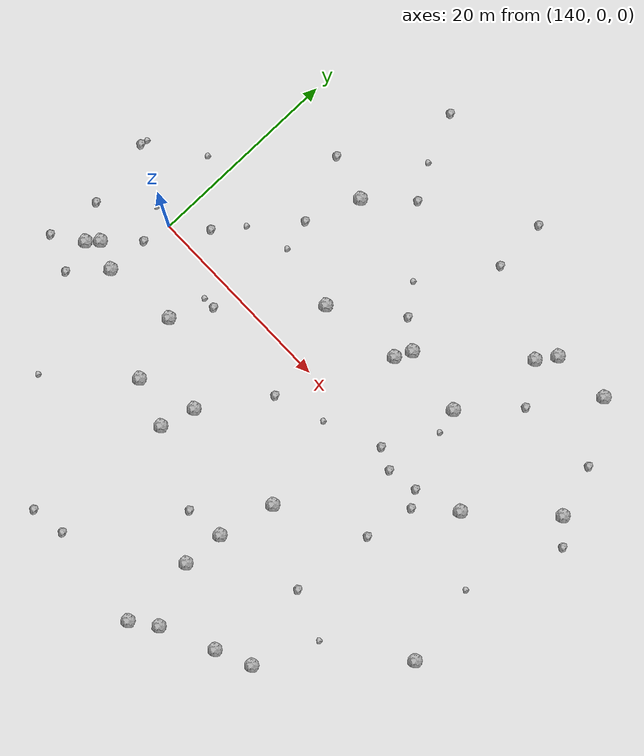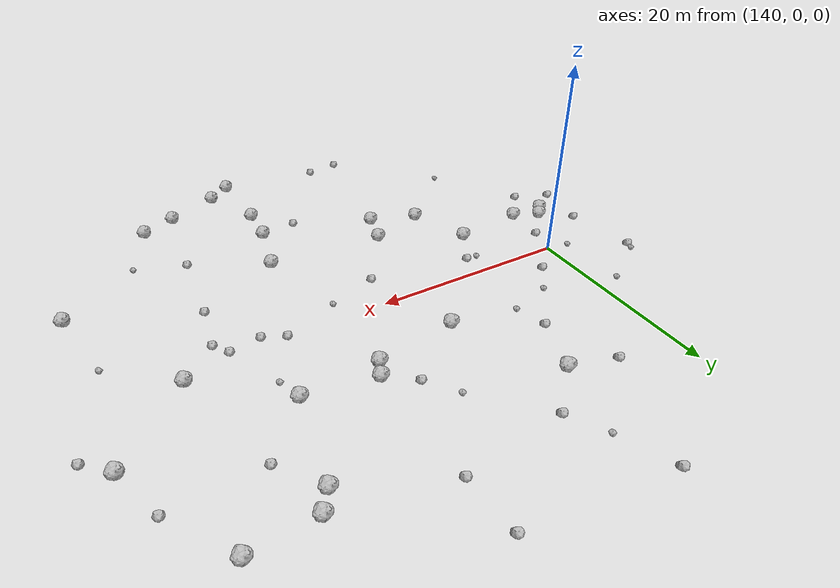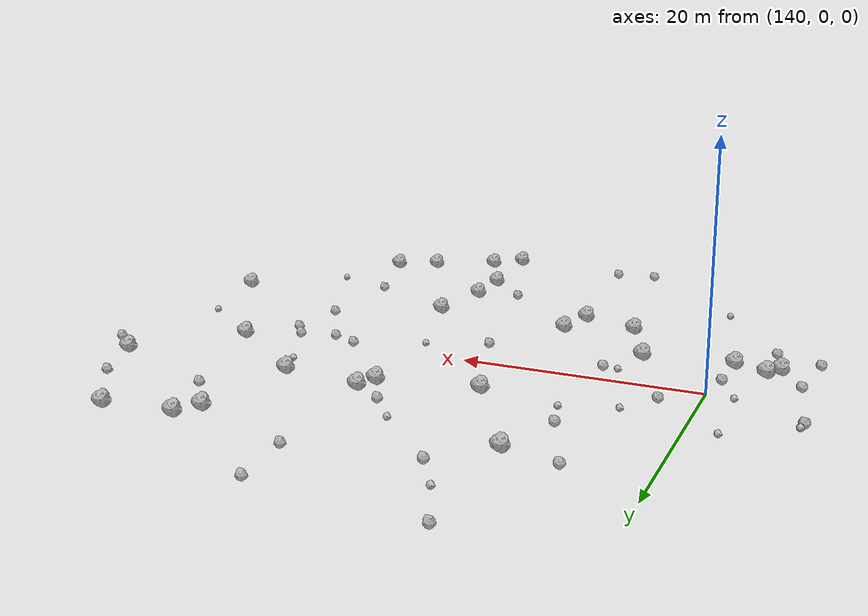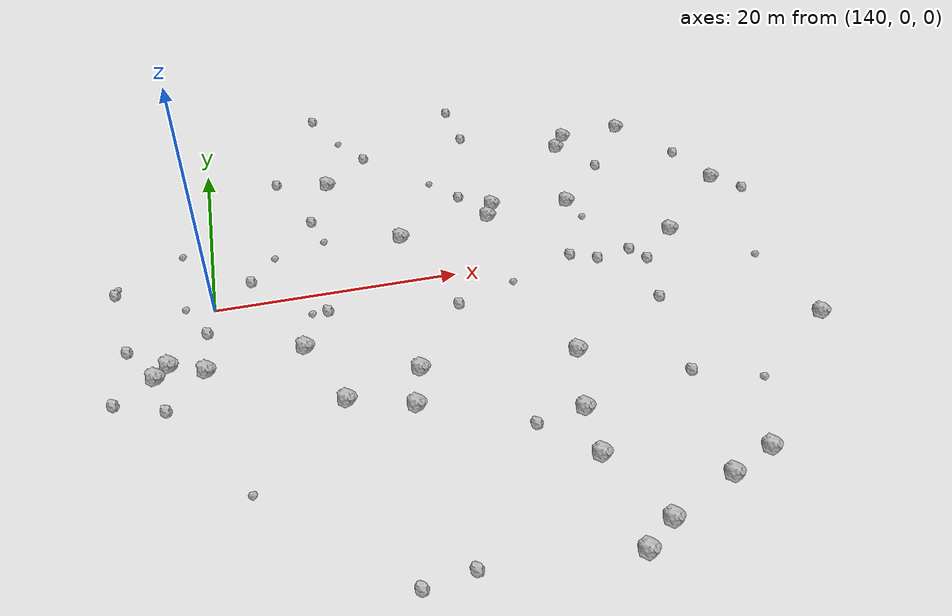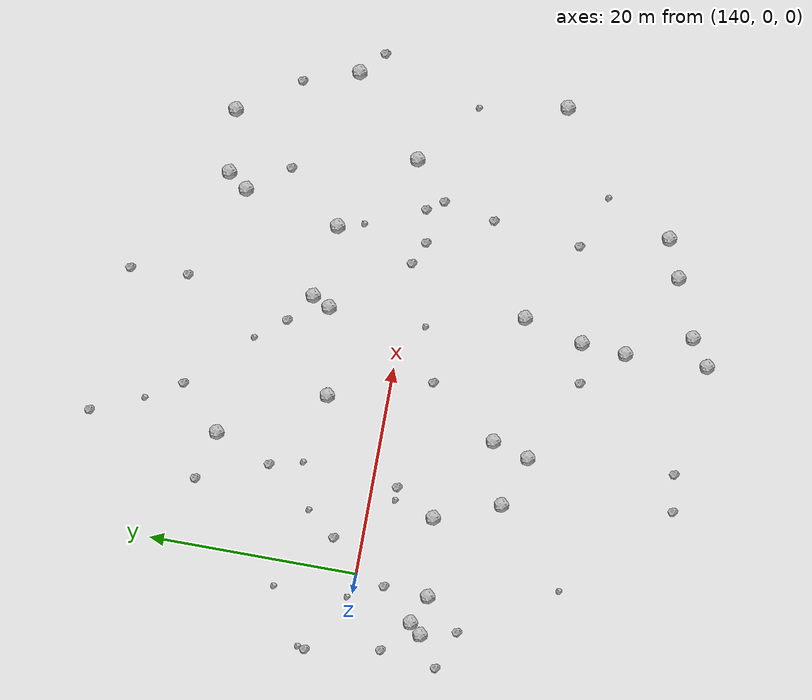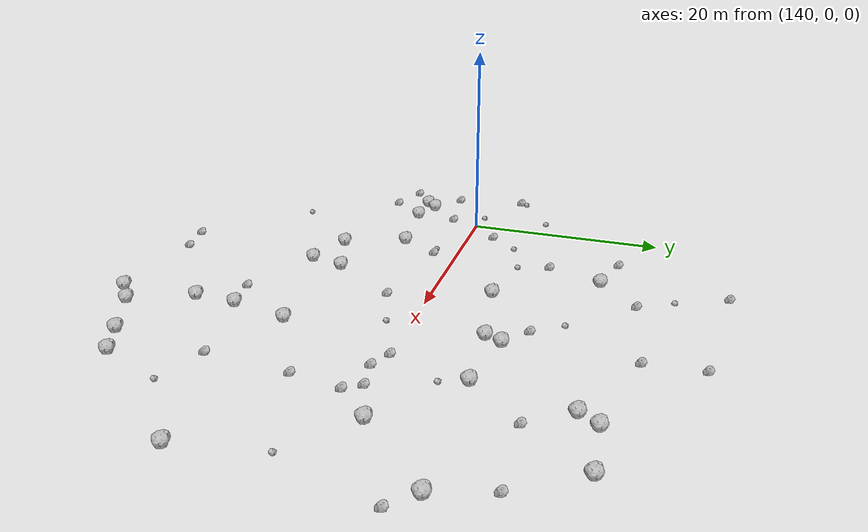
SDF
<sdf version="1.6">
 <world name="default">
  <include><uri>model://sun</uri></include>
  <model name="rock1_4_2">
   <include><uri>model://rock1</uri><pose>136.4884788955915 -5.9048086210107655 0.5 0 0 0</pose></include>
  </model>
  <model name="rock1_4_3">
   <include><uri>model://rock1</uri><pose>139.2257520612002 -7.081255359581746 0.5 0 0 0</pose></include>
  </model>
  <model name="rock1_4_4">
   <include><uri>model://rock1</uri><pose>153.87548468726922 -14.086606629090408 0.5 0 0 0</pose></include>
  </model>
  <model name="rock1_4_5">
   <include><uri>model://rock1</uri><pose>176.84197830544454 -23.61094057781429 0.5 0 0 0</pose></include>
  </model>
  <model name="rock1_4_6">
   <include><uri>model://rock1</uri><pose>165.57902440448066 -17.20372052909255 0.5 0 0 0</pose></include>
  </model>
  <model name="rock1_4_7">
   <include><uri>model://rock1</uri><pose>181.61094979412178 19.168424873589615 0.5 0 0 0</pose></include>
  </model>
  <model name="rock1_4_8">
   <include><uri>model://rock1</uri><pose>156.36069480842107 5.747862830494725 0.5 0 0 0</pose></include>
  </model>
  <model name="rock1_4_9">
   <include><uri>model://rock1</uri><pose>187.18619226921993 8.210142086783257 0.5 0 0 0</pose></include>
  </model>
  <model name="rock1_4_10">
   <include><uri>model://rock1</uri><pose>173.2987917645169 -25.141062107802583 0.5 0 0 0</pose></include>
  </model>
  <model name="rock1_4_11">
   <include><uri>model://rock1</uri><pose>151.04629725743052 15.475539594952863 0.5 0 0 0</pose></include>
  </model>
  <model name="rock1_4_12">
   <include><uri>model://rock1</uri><pose>165.4668822787654 8.76023012169685 0.5 0 0 0</pose></include>
  </model>
  <model name="rock1_4_13">
   <include><uri>model://rock1</uri><pose>165.28998467824906 -21.46247990992726 0.5 0 0 0</pose></include>
  </model>
  <model name="rock1_4_14">
   <include><uri>model://rock1</uri><pose>167.920128699847 -27.51333758624658 0.5 0 0 0</pose></include>
  </model>
  <model name="rock1_4_15">
   <include><uri>model://rock1</uri><pose>175.6295161231005 18.727523334021953 0.5 0 0 0</pose></include>
  </model>
  <model name="rock1_4_16">
   <include><uri>model://rock1</uri><pose>164.65982559464538 7.0889364227093665 0.5 0 0 0</pose></include>
  </model>
  <model name="rock1_4_17">
   <include><uri>model://rock1</uri><pose>172.38575689597116 7.66643906827845 0.5 0 0 0</pose></include>
  </model>
  <model name="rock1_4_18">
   <include><uri>model://rock1</uri><pose>135.51571611540047 -7.008923321043589 0.5 0 0 0</pose></include>
  </model>
  <model name="rock1_4_19">
   <include><uri>model://rock1</uri><pose>165.4792955660634 -29.33171799159398 0.5 0 0 0</pose></include>
  </model>
  <model name="rock1_4_20">
   <include><uri>model://rock1</uri><pose>166.97174822259007 -11.45931756388364 0.5 0 0 0</pose></include>
  </model>
  <model name="rock1_4_21">
   <include><uri>model://rock1</uri><pose>174.32277648030575 16.860321212820622 0.5 0 0 0</pose></include>
  </model>
  <model name="rock1_4_22">
   <include><uri>model://rock1</uri><pose>146.6844116432469 -6.2516701654679245 0.5 0 0 0</pose></include>
  </model>
  <model name="rock1_4_23">
   <include><uri>model://rock1</uri><pose>187.39091774835452 -11.884558156051156 0.5 0 0 0</pose></include>
  </model>
  <model name="rock1_4_24">
   <include><uri>model://rock1</uri><pose>154.87180577691237 -10.582876610056303 0.5 0 0 0</pose></include>
  </model>
  <model name="rock1_4_25">
   <include><uri>model://rock1</uri><pose>179.9931182851979 1.3039101384431682 0.5 0 0 0</pose></include>
  </model>
  <model name="rock1_4_26">
   <include><uri>model://rock1</uri><pose>149.0537010910327 -12.42564042633089 0.5 0 0 0</pose></include>
  </model>
  <model name="rock2_4_0">
   <include><uri>model://rock2</uri><pose>136.30253003864735 -10.43585838791212 0.3 0 0 0</pose></include>
  </model>
  <model name="rock2_4_1">
   <include><uri>model://rock2</uri><pose>139.38346076770955 -2.804162115990522 0.3 0 0 0</pose></include>
  </model>
  <model name="rock2_4_2">
   <include><uri>model://rock2</uri><pose>151.2671777101641 -28.605136220936604 0.3 0 0 0</pose></include>
  </model>
  <model name="rock2_4_3">
   <include><uri>model://rock2</uri><pose>148.88738380482818 10.04294697135046 0.3 0 0 0</pose></include>
  </model>
  <model name="rock2_4_4">
   <include><uri>model://rock2</uri><pose>150.9566663296613 27.816496665514613 0.3 0 0 0</pose></include>
  </model>
  <model name="rock2_4_5">
   <include><uri>model://rock2</uri><pose>143.10145054534425 2.7459034822563453 0.3 0 0 0</pose></include>
  </model>
  <model name="rock2_4_6">
   <include><uri>model://rock2</uri><pose>132.57928254519277 -9.001192973471177 0.3 0 0 0</pose></include>
  </model>
  <model name="rock2_4_7">
   <include><uri>model://rock2</uri><pose>175.4215984232213 -0.3665763384149443 0.3 0 0 0</pose></include>
  </model>
  <model name="rock2_4_8">
   <include><uri>model://rock2</uri><pose>148.89144157019152 -2.3572771917676114 0.3 0 0 0</pose></include>
  </model>
  <model name="rock2_4_9">
   <include><uri>model://rock2</uri><pose>155.05538161856109 19.44556478695602 0.3 0 0 0</pose></include>
  </model>
  <model name="rock2_4_10">
   <include><uri>model://rock2</uri><pose>174.58233489219344 -15.363260068589057 0.3 0 0 0</pose></include>
  </model>
  <model name="rock2_4_11">
   <include><uri>model://rock2</uri><pose>161.74950108579236 -17.714677435578672 0.3 0 0 0</pose></include>
  </model>
  <model name="rock2_4_12">
   <include><uri>model://rock2</uri><pose>132.1446490969431 3.5859582349403 0.3 0 0 0</pose></include>
  </model>
  <model name="rock2_4_13">
   <include><uri>model://rock2</uri><pose>133.34621483063168 -3.567715655214098 0.3 0 0 0</pose></include>
  </model>
  <model name="rock2_4_14">
   <include><uri>model://rock2</uri><pose>176.46054038202467 -1.9314026119575125 0.3 0 0 0</pose></include>
  </model>
  <model name="rock2_4_15">
   <include><uri>model://rock2</uri><pose>170.13472884768527 0.07959584826750898 0.3 0 0 0</pose></include>
  </model>
  <model name="rock2_4_16">
   <include><uri>model://rock2</uri><pose>177.05296661581886 12.958117345647295 0.3 0 0 0</pose></include>
  </model>
  <model name="rock2_4_17">
   <include><uri>model://rock2</uri><pose>172.3145021562203 -0.912092611355277 0.3 0 0 0</pose></include>
  </model>
  <model name="rock2_4_18">
   <include><uri>model://rock2</uri><pose>185.41410574855092 13.395144697221312 0.3 0 0 0</pose></include>
  </model>
  <model name="rock2_4_19">
   <include><uri>model://rock2</uri><pose>154.79358258624987 -28.107460529391417 0.3 0 0 0</pose></include>
  </model>
  <model name="rock2_4_20">
   <include><uri>model://rock2</uri><pose>162.713475861404 10.7908537804147 0.3 0 0 0</pose></include>
  </model>
  <model name="rock2_4_21">
   <include><uri>model://rock2</uri><pose>175.5189436682937 -6.920171788942056 0.3 0 0 0</pose></include>
  </model>
  <model name="rock2_4_22">
   <include><uri>model://rock2</uri><pose>146.32216431189153 16.748012271785065 0.3 0 0 0</pose></include>
  </model>
  <model name="rock2_4_23">
   <include><uri>model://rock2</uri><pose>164.9939853226059 26.38217212328675 0.3 0 0 0</pose></include>
  </model>
  <model name="rock2_4_24">
   <include><uri>model://rock2</uri><pose>189.33437919279143 6.1012091406026485 0.3 0 0 0</pose></include>
  </model>
  <model name="rock2_4_25">
   <include><uri>model://rock2</uri><pose>165.2925367379289 20.867498232827558 0.3 0 0 0</pose></include>
  </model>
  <model name="rock2_4_26">
   <include><uri>model://rock2</uri><pose>159.3310196728752 -3.9666878005788355 0.3 0 0 0</pose></include>
  </model>
  <model name="rock3_4_0">
   <include><uri>model://rock3</uri><pose>141.86117684983302 -19.31928126519061 0.2 0 0 0</pose></include>
  </model>
  <model name="rock3_4_1">
   <include><uri>model://rock3</uri><pose>137.5347780646266 7.531666721264841 0.2 0 0 0</pose></include>
  </model>
  <model name="rock3_4_2">
   <include><uri>model://rock3</uri><pose>145.25006568291016 5.504259110530526 0.2 0 0 0</pose></include>
  </model>
  <model name="rock3_4_3">
   <include><uri>model://rock3</uri><pose>132.28679286045698 4.2607844698026796 0.2 0 0 0</pose></include>
  </model>
  <model name="rock3_4_4">
   <include><uri>model://rock3</uri><pose>152.99644611993506 22.813318899432566 0.2 0 0 0</pose></include>
  </model>
  <model name="rock3_4_5">
   <include><uri>model://rock3</uri><pose>160.50486964012907 13.582183833084848 0.2 0 0 0</pose></include>
  </model>
  <model name="rock3_4_6">
   <include><uri>model://rock3</uri><pose>149.63786633826942 6.851602901370065 0.2 0 0 0</pose></include>
  </model>
  <model name="rock3_4_7">
   <include><uri>model://rock3</uri><pose>137.74329516297405 0.45114348047113495 0.2 0 0 0</pose></include>
  </model>
  <model name="rock3_4_8">
   <include><uri>model://rock3</uri><pose>185.82808161049553 -3.611092443594142 0.2 0 0 0</pose></include>
  </model>
  <model name="rock3_4_9">
   <include><uri>model://rock3</uri><pose>147.6226794174687 -2.416253318703255 0.2 0 0 0</pose></include>
  </model>
  <model name="rock3_4_10">
   <include><uri>model://rock3</uri><pose>164.3953653171087 -2.2961821533117224 0.2 0 0 0</pose></include>
  </model>
  <model name="rock3_4_11">
   <include><uri>model://rock3</uri><pose>173.02266680962964 5.169523408799563 0.2 0 0 0</pose></include>
  </model>
  <model name="rock3_4_12">
   <include><uri>model://rock3</uri><pose>179.5844410669601 -17.283857754013027 0.2 0 0 0</pose></include>
  </model>
 </world>
</sdf>
